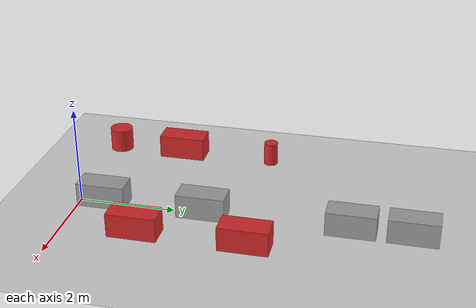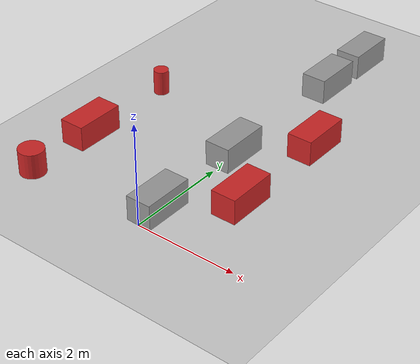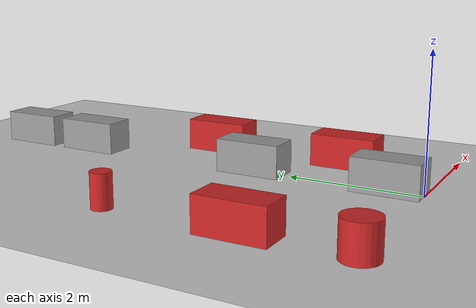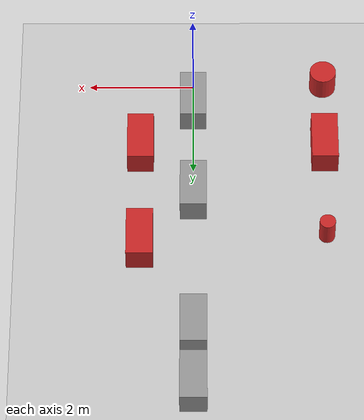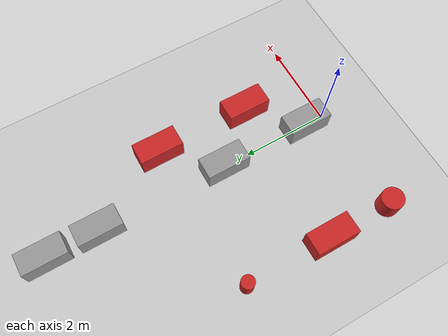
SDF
<sdf version='1.6'>
  <world name='default'>
    <light name='sun' type='directional'>
      <cast_shadows>1</cast_shadows>
      <pose frame=''>0 0 10 0 -0 0</pose>
      <diffuse>0.8 0.8 0.8 1</diffuse>
      <specular>0.1 0.1 0.1 1</specular>
      <attenuation>
        <range>1000</range>
        <constant>0.9</constant>
        <linear>0.01</linear>
        <quadratic>0.001</quadratic>
      </attenuation>
      <direction>-0.5 0.5 -1</direction>
    </light>
    <model name='my_ground_plane'>
      <static>1</static>
      <link name='link'>
        <collision name='collision'>
          <geometry>
            <plane>
              <normal>0 0 1</normal>
              <size>100 100</size>
            </plane>
          </geometry>
          <surface>
            <friction>
              <ode>
                <mu>100</mu>
                <mu2>50</mu2>
              </ode>
              <torsional>
                <ode/>
              </torsional>
            </friction>
            <contact>
              <ode/>
            </contact>
            <bounce/>
          </surface>
          <max_contacts>10</max_contacts>
        </collision>
        <visual name='visual'>
          <cast_shadows>0</cast_shadows>
          <geometry>
            <plane>
              <normal>0 0 1</normal>
              <size>28 28</size>
            </plane>
          </geometry>
          <material>
            <script>
              <uri>model://my_ground_plane/materials/scripts</uri>
              <uri>model://my_ground_plane/materials/textures</uri>
              <name>MyGroundPlane/Image</name>
            </script>
          </material>
        </visual>
        <self_collide>0</self_collide>
        <kinematic>0</kinematic>
        <gravity>1</gravity>
        <enable_wind>0</enable_wind>
      </link>
    </model>
    <gravity>0 0 -9.8</gravity>
    <magnetic_field>6e-06 2.3e-05 -4.2e-05</magnetic_field>
    <atmosphere type='adiabatic'/>
    <physics name='default_physics' default='0' type='ode'>
      <max_step_size>0.001</max_step_size>
      <real_time_factor>1</real_time_factor>
      <real_time_update_rate>1000</real_time_update_rate>
    </physics>
    <scene>
      <ambient>0.4 0.4 0.4 1</ambient>
      <background>0.7 0.7 0.7 1</background>
      <shadows>1</shadows>
      <sky>
        <clouds>
          <speed>12</speed>
        </clouds>
      </sky>
    </scene>
    <spherical_coordinates>
      <surface_model>EARTH_WGS84</surface_model>
      <latitude_deg>0</latitude_deg>
      <longitude_deg>0</longitude_deg>
      <elevation>0</elevation>
      <heading_deg>0</heading_deg>
    </spherical_coordinates>

    <!-- Quader in einer Reihe (wie hintereinander geparkte Autos) -->
    <model name="quader_reihe">
      <static>true</static>

      <!-- Erster Quader -->
      <link name="quader_1">
        <pose>0 0.5 0.25 0 0 0</pose>
        <collision name="collision">
          <geometry>
            <box>
              <size>0.5 1 0.5</size>
            </box>
          </geometry>
        </collision>
        <visual name="visual">
          <geometry>
            <box>
              <size>0.5 1 0.5</size>
            </box>
          </geometry>
          <material>
            <script>
              <uri>file://media/materials/scripts/gazebo.material</uri>
              <name>Gazebo/Grey</name>
            </script>
          </material>
        </visual>
      </link>

      <!-- Zweiter Quader -->
      <link name="quader_2">
        <pose>0 2.6 0.25 0 0 0</pose> <!-- Abstand 1 (Länge) + 0.2 -->
        <collision name="collision">
          <geometry>
            <box>
              <size>0.5 1 0.5</size>
            </box>
          </geometry>
        </collision>
        <visual name="visual">
          <geometry>
            <box>
              <size>0.5 1 0.5</size>
            </box>
          </geometry>
          <material>
            <script>
              <uri>file://media/materials/scripts/gazebo.material</uri>
              <name>Gazebo/Grey</name>
            </script>
          </material>
        </visual>
      </link>

      <!-- Vierter Quader -->
      <link name="quader_4">
        <pose>0 5.6 0.25 0 0 0</pose> <!-- Abstand 3*1.2 = 3.6 -->
        <collision name="collision">
          <geometry>
            <box>
              <size>0.5 1 0.5</size>
            </box>
          </geometry>
        </collision>
        <visual name="visual">
          <geometry>
            <box>
              <size>0.5 1 0.5</size>
            </box>
          </geometry>
          <material>
            <script>
              <uri>file://media/materials/scripts/gazebo.material</uri>
              <name>Gazebo/Grey</name>
            </script>
          </material>
        </visual>
      </link>

      <!-- Fünfter Quader -->
      <link name="quader_5">
        <pose>0 6.8 0.25 0 0 0</pose> <!-- Abstand 4*1.2 = 4.8 -->
        <collision name="collision">
          <geometry>
            <box>
              <size>0.5 1 0.5</size>
            </box>
          </geometry>
        </collision>
        <visual name="visual">
          <geometry>
            <box>
              <size>0.5 1 0.5</size>
            </box>
          </geometry>
          <material>
            <script>
              <uri>file://media/materials/scripts/gazebo.material</uri>
              <name>Gazebo/Grey</name>
            </script>
          </material>
        </visual>
      </link>

      <link name="quader_behind_parking_space">
        <pose>1 3.7 0.25 0 0 0</pose> <!-- Abstand 4*1.2 = 4.8 -->
        <collision name="collision">
          <geometry>
            <box>
              <size>0.5 1 0.5</size>
            </box>
          </geometry>
        </collision>
        <visual name="visual">
          <geometry>
            <box>
              <size>0.5 1 0.5</size>
            </box>
          </geometry>
          <material>
            <script>
              <uri>file://media/materials/scripts/gazebo.material</uri>
              <name>Gazebo/Red</name>
            </script>
          </material>
        </visual>
      </link>

      <link name="quader_between_cars">
        <pose>1 1.5 0.25 0 0 0</pose> <!--zwischen quader_2 und quader_3-->
        <collision name="collision">
          <geometry>
            <box>
              <size>0.5 1 0.5</size>
            </box>
          </geometry>
        </collision>
        <visual name="visual">
          <geometry>
            <box>
              <size>0.5 1 0.5</size>
            </box>
          </geometry>
          <material>
            <script>
              <uri>file://media/materials/scripts/gazebo.material</uri>
              <name>Gazebo/Red</name>
            </script>
          </material>
        </visual>
      </link>

      <link name="quader_left_side_of_street">
        <pose>-2.5 1.5 0.25 0 0 0</pose>
        <collision name="collision">
          <geometry>
            <box>
              <size>0.5 1 0.5</size>
            </box>
          </geometry>
        </collision>
        <visual name="visual">
          <geometry>
            <box>
              <size>0.5 1 0.5</size>
            </box>
          </geometry>
          <material>
            <script>
              <uri>file://media/materials/scripts/gazebo.material</uri>
              <name>Gazebo/Red</name>
            </script>
          </material>
        </visual>
      </link>

      <link name="cylinder">
        <pose>-2.5 3.5 0.25 0 0 0</pose>
        <collision name="collision">
          <geometry>
            <cylinder>
              <radius>0.15</radius>
              <length>0.5</length>
            </cylinder>
          </geometry>
        </collision>
        <visual name="visual">
          <geometry>
            <cylinder>
              <radius>0.15</radius>
              <length>0.5</length>
            </cylinder>
          </geometry>
          <material>
            <script>
              <uri>file://media/materials/scripts/gazebo.material</uri>
              <name>Gazebo/Red</name>
            </script>
          </material>
        </visual>
      </link>

      <link name="cylinder_2">
        <pose>-2.5 0.0 0.25 0 0 0</pose>
        <collision name="collision">
          <geometry>
            <cylinder>
              <radius>0.25</radius>
              <length>0.5</length>
            </cylinder>
          </geometry>
        </collision>
        <visual name="visual">
          <geometry>
            <cylinder>
              <radius>0.25</radius>
              <length>0.5</length>
            </cylinder>
          </geometry>
          <material>
            <script>
              <uri>file://media/materials/scripts/gazebo.material</uri>
              <name>Gazebo/Red</name>
            </script>
          </material>
        </visual>
      </link>

    </model>
  </world>
</sdf>
